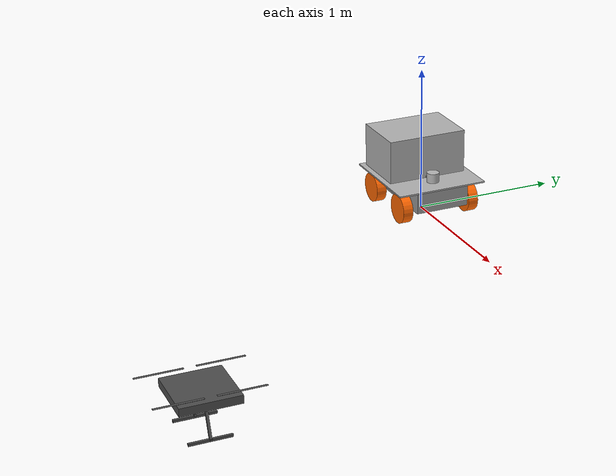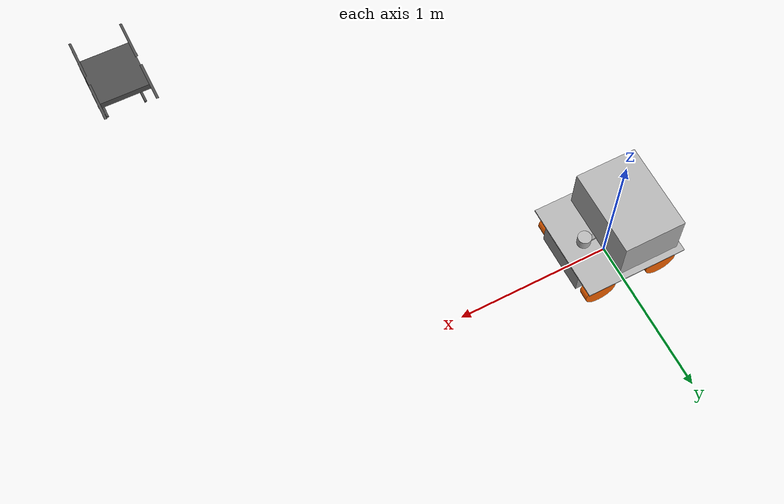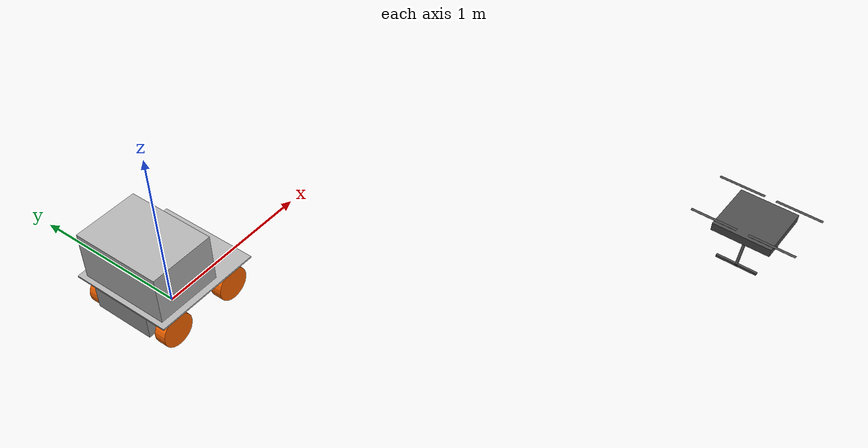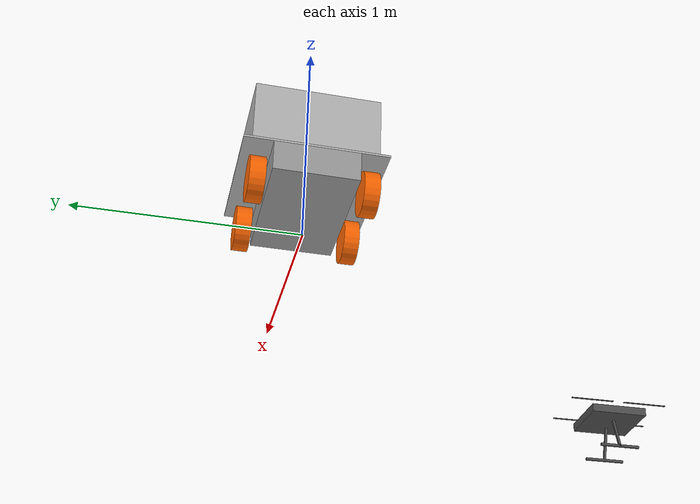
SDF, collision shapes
<?xml version="1.0" ?>
<sdf version="1.6">

  <plugin
    filename="ignition-gazebo-sensors-system"
    name="ignition::gazebo::systems::Sensors">
    <render_engine>ogre2</render_engine>
  </plugin>

  <odom_publish_frequency>1</odom_publish_frequency>
  <model name="tether_marsupial">
    <include>
      <uri>model://arco</uri>
      <pose frame=''> 0 0 0.18 0 0 0</pose>
    </include>

     <include>
      <uri>model://x500</uri>
      # General Offset above UGV   next   Use in Teatro ShortMission
      <pose frame=''> 2.21 -2.39 0.25 0 0 1.55</pose>
    </include>

  </model>

</sdf>

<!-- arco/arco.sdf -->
<sdf version='1.7'>

  <odom_publish_frequency>1</odom_publish_frequency>
  <topic>cmd_vel</topic>

  <model name='arco'>
    <plugin filename="ignition-gazebo-imu-system"
      name="ignition::gazebo::systems::Imu">
    </plugin>
    <link name='base_link'>
      <inertial>
        <mass>20</mass>
        <inertia>
          <ixx>0.273333</ixx>
          <ixy>0</ixy>
          <ixz>0</ixz>
          <iyy>0.758667</iyy>
          <iyz>0</iyz>
          <izz>0.966667</izz>
        </inertia>
        <pose>0 0 0 0 -0 0</pose>
      </inertial>
      <pose>0 0 0 0 -0 0</pose>
      <visual name='visual'>
        <geometry>
          <box>
            <size>0.66 0.38 0.14</size>
          </box>
        </geometry>
        <material>
          <script>
            <name>Gazebo/Grey</name>
            <uri>file://media/materials/scripts/gazebo.material</uri>
          </script>
          <ambient>1 1 1 1</ambient>
          <diffuse>0.7 0.7 0.7 1</diffuse>
          <specular>0.01 0.01 0.01 1</specular>
          <emissive>0 0 0 1</emissive>
        </material>
      </visual>
      <collision name='collision'>
        <pose>0 0 0 0 -0 0</pose>
        <geometry>
          <box>
            <size>0.66 0.38 0.14</size>
          </box>
        </geometry>
      </collision>

      <collision name='imu_collision'>
        <pose>0.12 0 0.09 0 -0 0</pose>
        <geometry>
          <box>
            <size>0.031 0.031 0.01</size>
          </box>
        </geometry>
      </collision>
      <visual name='imu_visual'>
        <pose>0.12 0 0.09 0 -0 0</pose>
        <geometry>
          <mesh>
            <scale>0.001 0.001 0.001</scale>
            <uri>model://arco/meshes/razor_imu/razor_imu.stl</uri>
          </mesh>
        </geometry>
        <material>
          <ambient>1 0 0  1</ambient>
          <diffuse>1 0 0 1</diffuse>
          <specular>1 0 0  1</specular>
          <emissive>0 0 0 1</emissive>
        </material>
      </visual>
      <sensor name="imu_sensor" type="imu">
        <always_on>1</always_on>
        <update_rate>1</update_rate>
        <visualize>true</visualize>
        <topic>arco/imu</topic>
        <ignition_frame_id>arco/imu</ignition_frame_id>
      </sensor>
    </link>

    <link name='front_right'>
      <inertial>
        <mass>0.5</mass>
        <inertia>
          <ixx>0.00104176</ixx>
          <ixy>0</ixy>
          <ixz>0</ixz>
          <iyy>0.00104176</iyy>
          <iyz>0</iyz>
          <izz>0.001225</izz>
        </inertia>
        <pose>0 0 0 0 -0 0</pose>
      </inertial>
      <pose>0.21 -0.247 -0.06 -1.57 0 0</pose>
      <visual name='visual'>
        <pose>0 0 0 1.57 -0 0</pose>
        <geometry>
          <mesh>
            <scale>0.002 0.002 0.002</scale>
            <uri>model://arco/meshes/mecanum/mecanum_wheel_left.STL</uri>
          </mesh>
        </geometry>
        <material>
          <ambient>1 0 0  1</ambient>
          <diffuse>1 0.4 0 1</diffuse>
          <specular>1 0.4 0  1</specular>
          <emissive>0 0 0 1</emissive>
        </material>
      </visual>
      <collision name='collision'>
        <pose>0 0 0 0 -0 0</pose>
        <geometry>
          <cylinder>
            <radius>0.1015</radius>
            <length>0.07</length>
          </cylinder>
        </geometry>
      </collision>
    </link>

     <link name='rear_right'>
      <inertial>
        <mass>0.5</mass>
        <inertia>
          <ixx>0.00104176</ixx>
          <ixy>0</ixy>
          <ixz>0</ixz>
          <iyy>0.00104176</iyy>
          <iyz>0</iyz>
          <izz>0.001225</izz>
        </inertia>
        <pose>0 0 0 0 -0 0</pose>
      </inertial>
      <pose>-0.21 -0.247 -0.06 -1.57 -0 0</pose>
      <visual name='visual'>
        <pose>0 0 0 1.57 -0 0</pose>
        <geometry>
         <mesh>
            <scale>0.002 0.002 0.002</scale>
            <uri>model://arco/meshes/mecanum/mecanum_wheel_left.STL</uri>
          </mesh>
        </geometry>
        <material>
          <ambient>1 0 0  1</ambient>
          <diffuse>1 0.4 0 1</diffuse>
          <specular>1 0.4 0  1</specular>
          <emissive>0 0 0 1</emissive>
        </material>
      </visual>
      <collision name='collision'>
        <pose>0 0 0 0 -0 0</pose>
        <geometry>
          <cylinder>
            <radius>0.1015</radius>
            <length>0.07</length>
          </cylinder>
        </geometry>
      </collision>
    </link>
     <link name='front_left'>
      <inertial>
        <mass>0.5</mass>
        <inertia>
          <ixx>0.00104176</ixx>
          <ixy>0</ixy>
          <ixz>0</ixz>
          <iyy>0.00104176</iyy>
          <iyz>0</iyz>
          <izz>0.001225</izz>
        </inertia>
        <pose>0 0 0 0 -0 0</pose>
      </inertial>
      <pose>0.21 0.247 -0.06 -1.57 -0 0</pose>
      <visual name='visual'>
        <pose>0 0 0 1.57 -0 0</pose>
        <geometry>
          <mesh>
            <scale>0.002 0.002 0.002</scale>
            <uri>model://arco/meshes/mecanum/mecanum_wheel_left.STL</uri>
          </mesh>
        </geometry>
        <material>
          <ambient>1 0 0  1</ambient>
          <diffuse>1 0.4 0 1</diffuse>
          <specular>1 0.4 0  1</specular>
          <emissive>0 0 0 1</emissive>
        </material>
      </visual>
      <collision name='collision'>
        <pose>0 0 0 0 -0 0</pose>
        <geometry>
          <cylinder>
            <radius>0.1015</radius>
            <length>0.07</length>
          </cylinder>
        </geometry>
      </collision>
    </link>
    <link name='rear_left'>
      <inertial>
        <mass>0.5</mass>
        <inertia>
          <ixx>0.00104176</ixx>
          <ixy>0</ixy>
          <ixz>0</ixz>
          <iyy>0.00104176</iyy>
          <iyz>0</iyz>
          <izz>0.001225</izz>
        </inertia>
        <pose>0 0 0 1.57 -0 0</pose>
      </inertial>
      <pose>-0.21 0.247 -0.06 -1.57 -0 0</pose>
      <visual name='visual'>
        <pose>0 0 0 1.57 -0 0</pose>
        <geometry>
          <mesh>
            <scale>0.002 0.002 0.002</scale>
            <uri>model://arco/meshes/mecanum/mecanum_wheel_left.STL</uri>
          </mesh>
        </geometry>
        <material>
          <ambient>1 0 0  1</ambient>
          <diffuse>1 0.4 0 1</diffuse>
          <specular>1 0.4 0  1</specular>
          <emissive>0 0 0 1</emissive>
        </material>
      </visual>
      <collision name='collision'>
        <pose>0 0 0 0 -0 0</pose>
        <geometry>
          <cylinder>
            <radius>0.1015</radius>
            <length>0.07</length>
          </cylinder>
        </geometry>
      </collision>
    </link>

    <link name='base_cover'>
      <inertial>
        <mass>1</mass>
        <inertia>
          <ixx>0.0341417</ixx>
          <ixy>0</ixy>
          <ixz>0</ixz>
          <iyy>0.0363083</iyy>
          <iyz>0</iyz>
          <izz>0.0704333</izz>
        </inertia>
        <pose>0 0 0 0 -0 0</pose>
      </inertial>
      <pose>-0 0 0.075 0 -0 0</pose>
      <visual name='visual'>
        <geometry>
          <box>
            <size>0.66 0.64 0.01</size>
          </box>
        </geometry>
        <material>
          <ambient>1 1 1 1</ambient>
          <diffuse>0.7 0.7 0.7 1</diffuse>
          <specular>0.01 0.01 0.01 1</specular>
          <emissive>0 0 0 1</emissive>
        </material>
        <pose>0 0 0 0 -0 0</pose>
      </visual>
      <collision name='collision'>
        <pose>0 0 0 0 -0 0</pose>
        <geometry>
          <box>
            <size>0.66 0.64 0.01</size>
          </box>
        </geometry>
      </collision>
    </link>

    <link name='base_platform'>
      <inertial>
        <mass>10</mass>
        <inertia>
          <ixx>0.336333</ixx>
          <ixy>0</ixy>
          <ixz>0</ixz>
          <iyy>0.208333</iyy>
          <iyz>0</iyz>
          <izz>0.394667</izz>
        </inertia>
        <pose>0 0 0 0 -0 0</pose>
      </inertial>
      <pose>-0.1 -0 0.23 0 -0 0</pose>
      <visual name='visual'>
        <geometry>
          <box>
            <size>0.4 0.56 0.3</size>
          </box>
        </geometry>
        <material>
          <ambient>0.5 0.5 0.5 1</ambient>
          <diffuse>0.7 0.7 0.7 1</diffuse>
          <specular>0.01 0.01 0.01 1</specular>
          <emissive>0 0 0 1</emissive>
        </material>
      </visual>
      <collision name='collision'>
        <pose>0 0 0 0 -0 0</pose>
        <geometry>
          <box>
            <size>0.4 0.56 0.3</size>
          </box>
        </geometry>
      </collision>
    </link>

    <link name="os1">
      <pose>0.18 0 0.11 0 0 0</pose>
      <inertial>
        <mass>0.1</mass>
        <inertia>
          <ixx>0.000090623</ixx>
          <iyy>0.000090623</iyy>
          <izz>0.000091036</izz>
          <ixy>0</ixy>
          <ixz>0</ixz>
          <iyz>0</iyz>
        </inertia>
      </inertial>
      <collision name="top_collision">
        <geometry>
          <cylinder>
            <radius>0.04267</radius>
            <length>0.07357</length>
          </cylinder>
        </geometry>
      </collision>
      <visual name="top_visual">
        <pose>0 0 -0.0376785 0 0 1.5707</pose>
        <geometry>
          <mesh>
            <uri>model://sensors/velodyne_hdl32/meshes/velodyne_top.dae</uri>
          </mesh>
        </geometry>
      </visual>
      <sensor name='sensor' type='gpu_lidar'>
          <topic>arco/os1_cloud_node</topic>
          <ignition_frame_id>arco/os1_lidar</ignition_frame_id>
          <pose>0 0 0.029335 0 0 3.1416</pose>
          <update_rate>10</update_rate>
          <ray>
            <noise>
              <type>gaussian</type>
              <mean>0.0</mean>
              <stddev>0.02</stddev>
            </noise>
            <scan>
                <horizontal>
                <samples>512</samples>
                <resolution>1</resolution>
                <min_angle>-3.14159</min_angle>
                <max_angle>3.14159</max_angle>
              </horizontal>
              <vertical>
                <samples>16</samples>
                <resolution>1</resolution>
                <min_angle>-0.2897247</min_angle>
                <max_angle>0.2897247</max_angle>
              </vertical>
            </scan>
            <range>
              <min>0.5</min>
              <max>25.0</max>
              <resolution>0.01</resolution>
            </range>
          </ray>
          <alwaysOn>1</alwaysOn>
          <visualize>true</visualize>
        </sensor>
    </link>

    <joint name="velodyne_joint" type="fixed">
      <child>os1</child>
      <parent>base_cover</parent>
      <pose>0.28 0 1.26 0 -0 0</pose>
    </joint>

     <joint name='JOINT_fixed_1' type='fixed'>
      <parent>base_link</parent>
      <child>base_cover</child>
      <pose>0 0 0 0 -0 0</pose>
    </joint>

    <joint name='JOINT_fixed_2' type='fixed'>
      <parent>base_cover</parent>
      <child>base_platform</child>
      <pose>0 0 0 0 -0 0</pose>
    </joint>

    <joint name='JOINT_wheel_front_right' type='revolute'>
      <parent>base_link</parent>
      <child>front_right</child>
      <pose>0 0 0.035 0 -0 0</pose>
      <axis>
        <xyz>0 0 1</xyz>
        <limit>
          <lower>-1.79769e+308</lower>
          <upper>1.79769e+308</upper>
        </limit>
      </axis>
    </joint>

    <joint name='JOINT_wheel_rear_right' type='revolute'>
      <parent>base_link</parent>
      <child>rear_right</child>
      <pose>0 0 0.035 0 -0 0</pose>
      <axis>
        <xyz>0 0 1</xyz>
        <limit>
          <lower>-1.79769e+308</lower>
          <upper>1.79769e+308</upper>
        </limit>
      </axis>
    </joint>

    <joint name='JOINT_wheel_front_left' type='revolute'>
      <parent>base_link</parent>
      <child>front_left</child>
      <pose>0 0 -0.035 0 -0 0</pose>
      <axis>
        <xyz>0 0 1</xyz>
        <limit>
          <lower>-1.79769e+308</lower>
          <upper>1.79769e+308</upper>
        </limit>
      </axis>
    </joint>

    <joint name='JOINT_wheel_rear_left' type='revolute'>
      <parent>base_link</parent>
      <child>rear_left</child>
      <pose>0 0 -0.035 0 -0 0</pose>
      <axis>
        <xyz>0 0 1</xyz>
        <limit>
          <lower>-1.79769e+308</lower>
          <upper>1.79769e+308</upper>
        </limit>
      </axis>
    </joint>

    <!-- Track drive -->
      <plugin filename="ignition-gazebo-diff-drive-system"
              name="ignition::gazebo::systems::DiffDrive">
        <left_joint>JOINT_wheel_front_left</left_joint>
        <left_joint>JOINT_wheel_rear_left </left_joint>
        <right_joint>JOINT_wheel_front_right</right_joint>
        <right_joint>JOINT_wheel_rear_right</right_joint>
        <wheel_separation>0.42</wheel_separation>
        <wheel_radius>0.1015</wheel_radius>
        <odom_publish_frequency>100</odom_publish_frequency>
        <topic>arco/idmind_motors/set_velocities</topic> #Custom topic that this system will subscribe to in order to receive command velocity messages. This element if optional, and the default value is /model/{name_of_model}/cmd_vel.
        <odom_topic>arco/odometry</odom_topic>  Custom topic on which this system will publish odometry messages. This element if optional, and the default value is /model/{name_of_model}/odometry.
        <tf_topic>arco/tf_odom_to_baselink</tf_topic>
        <frame_id>arco/odom</frame_id>
        <child_frame_id>arco/base_link</child_frame_id>
      </plugin>

  </model>
</sdf>

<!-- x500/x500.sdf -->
<sdf version='1.6'>
  <model name='x500'>
    <pose>0 0 0 0 0 0</pose>

    <static>false</static>
    <link name="base_link">
      <inertial>
        <mass>2.0</mass>
        <inertia>
          <ixx>0.02166666666666667</ixx>
          <ixy>0</ixy>
          <ixz>0</ixz>
          <iyy>0.02166666666666667</iyy>
          <iyz>0</iyz>
          <izz>0.04000000000000001</izz>
        </inertia>
      </inertial>

      <sensor name="os1_sensor" type="gpu_lidar">
        <topic>x500/os1_cloud_node</topic>
        <ignition_frame_id>os1_lidar</ignition_frame_id>
        <pose>0 0 0.0944 0 0 3.1416</pose>
        <update_rate>20</update_rate>
        <lidar>
          <scan>
            <horizontal>
              <samples>1024</samples>
              <resolution>1</resolution>
              <min_angle>-3.14159</min_angle>
              <max_angle>3.14159</max_angle>
            </horizontal>
            <vertical>
              <samples>32</samples>
              <resolution>1</resolution>
              <min_angle>-0.785398163397</min_angle>
              <max_angle>0.785398163397</max_angle>
            </vertical>
          </scan>
          <range>
            <min>0.1</min>
            <max>40</max>
            <resolution>0.005</resolution>
          </range>
          <noise>
              <type>gaussian</type>
              <mean>0</mean>
              <stddev>0.03</stddev>
          </noise>
        </lidar>
      </sensor>
       <sensor name="navsat_sensor" type="navsat">
          <topic>x500/navsat</topic>
          <always_on>1</always_on>
          <update_rate>10</update_rate>
        </sensor>
      <sensor name="imu_sensor" type="imu">
          <topic>x500/imu</topic>
          <always_on>1</always_on>
          <update_rate>30</update_rate>
          <ignition_frame_id>imu</ignition_frame_id>
      </sensor>
      <visual name='base_link_fixed_joint_lump__os_sensor_link_visual_23'>
        <pose>0.09 0 -0.21 0 -0 1.5708</pose>
        <geometry>
          <mesh>
            <scale>1 1 1</scale>
            <uri>meshes/os1_64.dae</uri>
          </mesh>
        </geometry>
        <material>
          <script>
            <name>Gazebo/DarkGrey</name>
            <uri>file://media/materials/scripts/gazebo.material</uri>
          </script>
        </material>
      </visual>
      <visual name="base_link_visual">
        <pose>0 0 .025 0 0 3.141592654</pose>
        <geometry>
          <mesh>
            <scale>1 1 1</scale>
            <uri>model://x500/meshes/NXP-HGD-CF.dae</uri>
          </mesh>
        </geometry>
      </visual>
      <visual name="5010_motor_base_0">
        <pose>0.174 0.174 .032 0 0 -.45</pose>
        <geometry>
          <mesh>
            <scale>1 1 1</scale>
            <uri>model://x500/meshes/5010Base.dae</uri>
          </mesh>
        </geometry>
      </visual>
      <visual name="5010_motor_base_1">
        <pose>-0.174 0.174 .032 0 0 -.45</pose>
        <geometry>
          <mesh>
            <scale>1 1 1</scale>
            <uri>model://x500/meshes/5010Base.dae</uri>
          </mesh>
        </geometry>
      </visual>
      <visual name="5010_motor_base_2">
        <pose>0.174 -0.174 .032 0 0 -.45</pose>
        <geometry>
          <mesh>
            <scale>1 1 1</scale>
            <uri>model://x500/meshes/5010Base.dae</uri>
          </mesh>
        </geometry>
      </visual>
      <visual name="5010_motor_base_3">
        <pose>-0.174 -0.174 .032 0 0 -.45</pose>
        <geometry>
          <mesh>
            <scale>1 1 1</scale>
            <uri>model://x500/meshes/5010Base.dae</uri>
          </mesh>
        </geometry>
      </visual>
      <visual name="NXP_FMUK66_FRONT">
        <pose>0.047 .001 .043 1 0 1.57</pose>
        <cast_shadows>false</cast_shadows>
        <geometry>
          <plane>
            <normal>0 0 1</normal>
            <size>.013 .007</size>
          </plane>
        </geometry>
        <material>
          <diffuse>1.0 1.0 1.0</diffuse>
          <specular>1.0 1.0 1.0</specular>
          <pbr>
            <metal>
              <albedo_map>model://x500/materials/textures/nxp.png</albedo_map>
            </metal>
          </pbr>
        </material>
      </visual>
      <visual name="NXP_FMUK66_TOP">
        <pose>-0.023 0 .0515 0 0 -1.57</pose>
        <cast_shadows>false</cast_shadows>
        <geometry>
          <plane>
            <normal>0 0 1</normal>
            <size>.013 .007</size>
          </plane>
        </geometry>
        <material>
          <diffuse>1.0 1.0 1.0</diffuse>
          <specular>1.0 1.0 1.0</specular>
          <pbr>
            <metal>
              <albedo_map>model://x500/materials/textures/nxp.png</albedo_map>
            </metal>
          </pbr>
        </material>
      </visual>
      <visual name="RDDRONE_FMUK66_TOP">
        <pose>-.03 0 .0515 0 0 -1.57</pose>
        <cast_shadows>false</cast_shadows>
        <geometry>
          <plane>
            <normal>0 0 1</normal>
            <size>.032 .0034</size>
          </plane>
        </geometry>
        <material>
          <diffuse>1.0 1.0 1.0</diffuse>
          <specular>1.0 1.0 1.0</specular>
          <pbr>
            <metal>
              <albedo_map>model://x500/materials/textures/rd.png</albedo_map>
            </metal>
          </pbr>
        </material>
      </visual>
      <collision name="base_link_collision_0">
        <pose>0 0 .007 0 0 0</pose>
        <geometry>
          <box>
            <size>0.35355339059327373 0.35355339059327373 0.05</size>
          </box>
        </geometry>
        <surface>
          <contact>
            <ode>
              <min_depth>0.001</min_depth>
              <max_vel>0</max_vel>
            </ode>
          </contact>
          <friction>
            <ode/>
          </friction>
        </surface>
      </collision>
      <collision name="base_link_collision_1">
        <pose>0 -0.098 -.123 -0.35 0 0</pose>
        <geometry>
          <box>
            <size>0.015 0.015 0.21</size>
          </box>
        </geometry>
        <surface>
          <contact>
            <ode>
              <min_depth>0.001</min_depth>
              <max_vel>0</max_vel>
            </ode>
          </contact>
          <friction>
            <ode/>
          </friction>
        </surface>
      </collision>
      <collision name="base_link_collision_2">
        <pose>0 0.098 -.123 0.35 0 0</pose>
        <geometry>
          <box>
            <size>0.015 0.015 0.21</size>
          </box>
        </geometry>
        <surface>
          <contact>
            <ode>
              <min_depth>0.001</min_depth>
              <max_vel>0</max_vel>
            </ode>
          </contact>
          <friction>
            <ode/>
          </friction>
        </surface>
      </collision>
      <collision name="base_link_collision_3">
        <pose>0 -0.132 -.2195 0 0 0</pose>
        <geometry>
          <box>
            <size>0.25 0.015 0.015</size>
          </box>
        </geometry>
        <surface>
          <contact>
            <ode>
              <min_depth>0.001</min_depth>
              <max_vel>0</max_vel>
            </ode>
          </contact>
          <friction>
            <ode/>
          </friction>
        </surface>
      </collision>
      <collision name="base_link_collision_4">
        <pose>0 0.132 -.2195 0 0 0</pose>
        <geometry>
          <box>
            <size>0.25 0.015 0.015</size>
          </box>
        </geometry>
        <surface>
          <contact>
            <ode>
              <min_depth>0.001</min_depth>
              <max_vel>0</max_vel>
            </ode>
          </contact>
          <friction>
            <ode/>
          </friction>
        </surface>
      </collision>
    </link>
    <link name="rotor_0">
      <pose>0.174 -0.174 0.06 0 0 0</pose>
      <inertial>
          <mass>0.016076923076923075</mass>
          <inertia>
            <ixx>3.8464910483993325e-07</ixx>
            <iyy>2.6115851691700804e-05</iyy>
            <izz>2.649858234714004e-05</izz>
          </inertia>
        </inertial>
      <visual name="rotor_0_visual">
        <pose>-0.022 -0.14638461538461536 -0.016 0 0 0</pose>
        <geometry>
          <mesh>
            <scale>0.8461538461538461 0.8461538461538461 0.8461538461538461</scale>
            <uri>model://x500/meshes/1345_prop_ccw.stl</uri>
          </mesh>
        </geometry>
        <material>
          <script>
            <name>Gazebo/DarkGrey</name>
            <uri>file://media/materials/scripts/gazebo.material</uri>
          </script>
        </material>
      </visual>
      <visual name="rotor_0_visual_motor_bell">
        <pose>0 0 -.032 0 0 0</pose>
        <geometry>
          <mesh>
            <scale>1 1 1</scale>
            <uri>model://x500/meshes/5010Bell.dae</uri>
          </mesh>
        </geometry>
      </visual>
      <collision name="rotor_0_collision">
        <pose>0 0 0 0 0 0 </pose>
        <geometry>
          <box>
            <size>0.2792307692307692 0.016923076923076923 0.0008461538461538462</size>
          </box>
        </geometry>
        <surface>
          <contact>
            <ode>
              <min_depth>0.001</min_depth>
              <max_vel>0</max_vel>
            </ode>
          </contact>
          <friction>
            <ode/>
          </friction>
        </surface>
      </collision>
    </link>
    <joint name="rotor_0_joint" type="revolute">
      <parent>base_link</parent>
      <child>rotor_0</child>
      <axis>
        <xyz>0 0 1</xyz>
        <limit>
          <lower>-1e+16</lower>
          <upper>1e+16</upper>
        </limit>
        <dynamics>
          <spring_reference>0</spring_reference>
          <spring_stiffness>0</spring_stiffness>
        </dynamics>
        <use_parent_model_frame>1</use_parent_model_frame>
      </axis>
    </joint>
    <link name="rotor_1">

      <pose>-0.174 0.174 0.06 0 0 0</pose>
      <inertial>
          <mass>0.016076923076923075</mass>
          <inertia>
            <ixx>3.8464910483993325e-07</ixx>
            <iyy>2.6115851691700804e-05</iyy>
            <izz>2.649858234714004e-05</izz>
          </inertia>
        </inertial>
      <visual name="rotor_1_visual">
        <pose>-0.022 -0.14638461538461536 -0.016 0 0 0</pose>
        <geometry>
          <mesh>
            <scale>0.8461538461538461 0.8461538461538461 0.8461538461538461</scale>
            <uri>model://x500/meshes/1345_prop_ccw.stl</uri>
          </mesh>
        </geometry>
        <material>
          <script>
            <name>Gazebo/DarkGrey</name>
            <uri>file://media/materials/scripts/gazebo.material</uri>
          </script>
        </material>
      </visual>
      <visual name="rotor_1_visual_motor_top">
        <pose>0 0 -.032 0 0 0</pose>
        <geometry>
          <mesh>
            <scale>1 1 1</scale>
            <uri>model://x500/meshes/5010Bell.dae</uri>
          </mesh>
        </geometry>
      </visual>
      <collision name="rotor_1_collision">
        <pose>0 0 0 0 0 0 </pose>
        <geometry>
          <box>
            <size>0.2792307692307692 0.016923076923076923 0.0008461538461538462</size>
          </box>
        </geometry>
        <surface>
          <contact>
            <ode>
              <min_depth>0.001</min_depth>
              <max_vel>0</max_vel>
            </ode>
          </contact>
          <friction>
            <ode/>
          </friction>
        </surface>
      </collision>
    </link>
    <joint name="rotor_1_joint" type="revolute">
      <parent>base_link</parent>
      <child>rotor_1</child>
      <axis>
        <xyz>0 0 1</xyz>
        <limit>
          <lower>-1e+16</lower>
          <upper>1e+16</upper>
        </limit>
        <dynamics>
          <spring_reference>0</spring_reference>
          <spring_stiffness>0</spring_stiffness>
        </dynamics>
        <use_parent_model_frame>1</use_parent_model_frame>
      </axis>
    </joint>
    <link name="rotor_2">

      <pose>0.174 0.174 0.06 0 0 0</pose>
      <inertial>
          <mass>0.016076923076923075</mass>
          <inertia>
            <ixx>3.8464910483993325e-07</ixx>
            <iyy>2.6115851691700804e-05</iyy>
            <izz>2.649858234714004e-05</izz>
          </inertia>
        </inertial>
      <visual name="rotor_2_visual">
        <pose>-0.022 -0.14638461538461536 -0.016 0 0 0</pose>
        <geometry>
          <mesh>
            <scale>0.8461538461538461 0.8461538461538461 0.8461538461538461</scale>
            <uri>model://x500/meshes/1345_prop_cw.stl</uri>
          </mesh>
        </geometry>
        <material>
          <script>
            <name>Gazebo/DarkGrey</name>
            <uri>file://media/materials/scripts/gazebo.material</uri>
          </script>
        </material>
      </visual>
      <visual name="rotor_2_visual_motor_top">
        <pose>0 0 -.032 0 0 0</pose>
        <geometry>
          <mesh>
            <scale>1 1 1</scale>
            <uri>model://x500/meshes/5010Bell.dae</uri>
          </mesh>
        </geometry>
      </visual>
      <collision name="rotor_2_collision">
        <pose>0 0 0 0 0 0 </pose>
        <geometry>
          <box>
            <size>0.2792307692307692 0.016923076923076923 0.0008461538461538462</size>
          </box>
        </geometry>
        <surface>
          <contact>
            <ode>
              <min_depth>0.001</min_depth>
              <max_vel>0</max_vel>
            </ode>
          </contact>
          <friction>
            <ode/>
          </friction>
        </surface>
      </collision>
    </link>
    <joint name="rotor_2_joint" type="revolute">
      <parent>base_link</parent>
      <child>rotor_2</child>
      <axis>
        <xyz>0 0 1</xyz>
        <limit>
          <lower>-1e+16</lower>
          <upper>1e+16</upper>
        </limit>
        <dynamics>
          <spring_reference>0</spring_reference>
          <spring_stiffness>0</spring_stiffness>
        </dynamics>
        <use_parent_model_frame>1</use_parent_model_frame>
      </axis>
    </joint>
    <link name="rotor_3">
      <pose>-0.174 -0.174 0.06 0 0 0</pose>
      <inertial>
          <mass>0.016076923076923075</mass>
          <inertia>
            <ixx>3.8464910483993325e-07</ixx>
            <iyy>2.6115851691700804e-05</iyy>
            <izz>2.649858234714004e-05</izz>
          </inertia>
        </inertial>
      <visual name="rotor_3_visual">
        <pose>-0.022 -0.14638461538461536 -0.016 0 0 0</pose>
        <geometry>
          <mesh>
            <scale>0.8461538461538461 0.8461538461538461 0.8461538461538461</scale>
            <uri>model://x500/meshes/1345_prop_cw.stl</uri>
          </mesh>
        </geometry>
        <material>
          <script>
            <name>Gazebo/DarkGrey</name>
            <uri>file://media/materials/scripts/gazebo.material</uri>
          </script>
        </material>
      </visual>
      <visual name="rotor_3_visual_motor_top">
        <pose>0 0 -.032 0 0 0</pose>
        <geometry>
          <mesh>
            <scale>1 1 1</scale>
            <uri>model://x500/meshes/5010Bell.dae</uri>
          </mesh>
        </geometry>
      </visual>
      <collision name="rotor_3_collision">
        <pose>0 0 0 0 0 0 </pose>
        <geometry>
          <box>
            <size>0.2792307692307692 0.016923076923076923 0.0008461538461538462</size>
          </box>
        </geometry>
        <surface>
          <contact>
            <ode>
              <min_depth>0.001</min_depth>
              <max_vel>0</max_vel>
            </ode>
          </contact>
          <friction>
            <ode/>
          </friction>
        </surface>
      </collision>
    </link>
    <joint name="rotor_3_joint" type="revolute">
      <parent>base_link</parent>
      <child>rotor_3</child>
      <axis>
        <xyz>0 0 1</xyz>
        <limit>
          <lower>-1e+16</lower>
          <upper>1e+16</upper>
        </limit>
        <dynamics>
          <spring_reference>0</spring_reference>
          <spring_stiffness>0</spring_stiffness>
        </dynamics>
        <use_parent_model_frame>1</use_parent_model_frame>
      </axis>
    </joint>
    <plugin filename="ignition-gazebo-multicopter-motor-model-system" name="ignition::gazebo::systems::MulticopterMotorModel">
      <robotNamespace>x500</robotNamespace>
      <jointName>rotor_0_joint</jointName>
      <linkName>rotor_0</linkName>
      <turningDirection>ccw</turningDirection>
      <timeConstantUp>0.0125</timeConstantUp>
      <timeConstantDown>0.025</timeConstantDown>
      <maxRotVelocity>820.0</maxRotVelocity>
      <motorConstant>8.54858e-06</motorConstant>
      <momentConstant>0.016</momentConstant>
      <commandSubTopic>gazebo/command/motor_speed</commandSubTopic>
      <motorNumber>0</motorNumber>
      <rotorDragCoefficient>8.06428e-05</rotorDragCoefficient>
      <rollingMomentCoefficient>1e-06</rollingMomentCoefficient>
        <motorSpeedPubTopic>motor_speed/0</motorSpeedPubTopic>
      <rotorVelocitySlowdownSim>10</rotorVelocitySlowdownSim>
      <motorType>velocity</motorType>
    </plugin>
    <plugin filename="ignition-gazebo-multicopter-motor-model-system" name="ignition::gazebo::systems::MulticopterMotorModel">
      <robotNamespace>x500</robotNamespace>
      <jointName>rotor_1_joint</jointName>
      <linkName>rotor_1</linkName>
      <turningDirection>ccw</turningDirection>
      <timeConstantUp>0.0125</timeConstantUp>
      <timeConstantDown>0.025</timeConstantDown>
      <maxRotVelocity>820.0</maxRotVelocity>
      <motorConstant>8.54858e-06</motorConstant>
      <momentConstant>0.016</momentConstant>
      <commandSubTopic>gazebo/command/motor_speed</commandSubTopic>
      <motorNumber>1</motorNumber>
      <rotorDragCoefficient>8.06428e-05</rotorDragCoefficient>
      <rollingMomentCoefficient>1e-06</rollingMomentCoefficient>
        <motorSpeedPubTopic>motor_speed/1</motorSpeedPubTopic>
      <rotorVelocitySlowdownSim>10</rotorVelocitySlowdownSim>
      <motorType>velocity</motorType>
    </plugin>
    <plugin filename="ignition-gazebo-multicopter-motor-model-system" name="ignition::gazebo::systems::MulticopterMotorModel">
      <robotNamespace>x500</robotNamespace>
      <jointName>rotor_2_joint</jointName>
      <linkName>rotor_2</linkName>
      <turningDirection>cw</turningDirection>
      <timeConstantUp>0.0125</timeConstantUp>
      <timeConstantDown>0.025</timeConstantDown>
      <maxRotVelocity>820.0</maxRotVelocity>
      <motorConstant>8.54858e-06</motorConstant>
      <momentConstant>0.016</momentConstant>
      <commandSubTopic>gazebo/command/motor_speed</commandSubTopic>
      <motorNumber>2</motorNumber>
      <rotorDragCoefficient>8.06428e-05</rotorDragCoefficient>
      <rollingMomentCoefficient>1e-06</rollingMomentCoefficient>
        <motorSpeedPubTopic>motor_speed/2</motorSpeedPubTopic>
      <rotorVelocitySlowdownSim>10</rotorVelocitySlowdownSim>
      <motorType>velocity</motorType>
    </plugin>
    <plugin filename="ignition-gazebo-multicopter-motor-model-system" name="ignition::gazebo::systems::MulticopterMotorModel">
      <robotNamespace>x500</robotNamespace>
      <jointName>rotor_3_joint</jointName>
      <linkName>rotor_3</linkName>
      <turningDirection>cw</turningDirection>
      <timeConstantUp>0.0125</timeConstantUp>
      <timeConstantDown>0.025</timeConstantDown>
      <maxRotVelocity>820.0</maxRotVelocity>
      <motorConstant>8.54858e-06</motorConstant>
      <momentConstant>0.016</momentConstant>
      <commandSubTopic>gazebo/command/motor_speed</commandSubTopic>
      <motorNumber>3</motorNumber>
      <rotorDragCoefficient>8.06428e-05</rotorDragCoefficient>
      <rollingMomentCoefficient>1e-06</rollingMomentCoefficient>
      <motorSpeedPubTopic>motor_speed/3</motorSpeedPubTopic>
      <rotorVelocitySlowdownSim>10</rotorVelocitySlowdownSim>
      <motorType>velocity</motorType>
    </plugin>
    <plugin
        filename="libignition-gazebo-imu-system.so"
        name="ignition::gazebo::systems::Imu">
    </plugin>
    <plugin
        filename="ignition-gazebo-odometry-publisher-system"
        name="ignition::gazebo::systems::OdometryPublisher">
        <dimensions>3</dimensions>
        <update_rate>20</update_rate>
        <tf_topic>x500/tf_odom_to_baselink</tf_topic>
        <odom_frame>odom</odom_frame>
        <robot_base_frame>base_link</robot_base_frame>
    </plugin>
     <!-- Processes the NavSat sensor -->
      <plugin
          filename="ignition-gazebo-navsat-system"
          name="ignition::gazebo::systems::NavSat">
          <dimensions>3</dimensions>
          <update_rate>20</update_rate>
      </plugin>

  </model>
</sdf>
